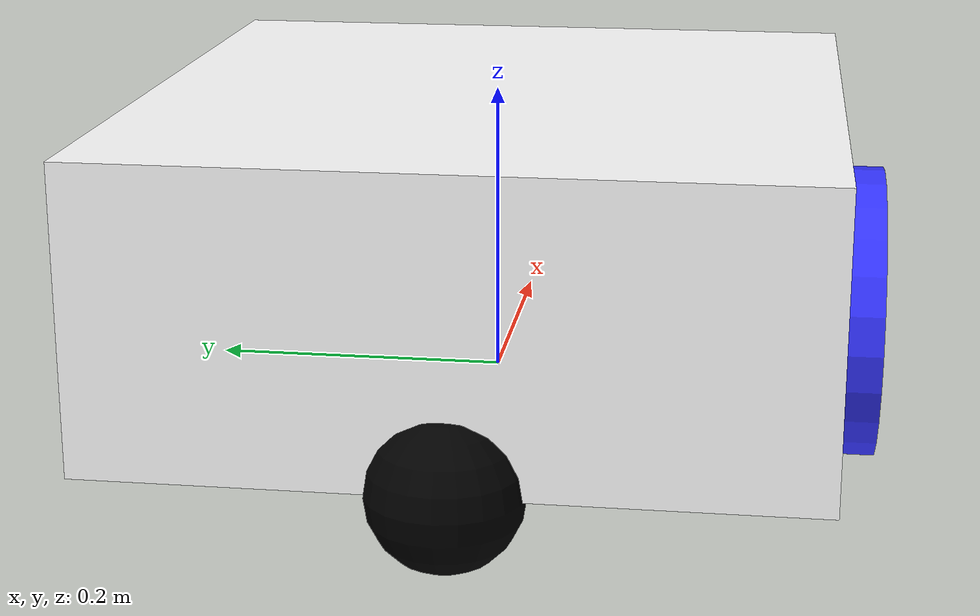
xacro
<?xml version="1.0"?>
<robot xmlns:xacro="http://www.ros.org/wiki/xacro" >

    <xacro:include filename="inertial_macros.xacro"/>

    <material name="white">
        <color rgba="1 1 1 1" />
    </material>

    <material name="orange">
        <color rgba="1 0.3 0.1 1"/>
    </material>

    <material name="blue">
        <color rgba="0.2 0.2 1 1"/>
    </material>

    <material name="black">
        <color rgba="0 0 0 1"/>
    </material>

    <!-- BASE LINK -->

    <link name="base_link">

    </link>

    <!-- CHASSIS LINK -->

    <joint name="chassis_joint" type="fixed">
        <parent link="base_link"/>
        <child link="chassis"/>
        <origin xyz="0 0 0.05"/>
    </joint>

    <link name="chassis">
        <visual>
            <origin xyz="0 0 0.05"/>
            <geometry>
                <box size="0.50 0.470 0.2"/>
            </geometry>
            <material name="white"/>
        </visual>
        <collision>
            <origin xyz="0 0 0.05"/>
            <geometry>
                <box size="0.5 0.47 0.2"/>
            </geometry>
        </collision>
        <xacro:inertial_box mass="0.5" x="0.5" y="0.47" z="0.2">
            <origin xyz="0 0 0.05" rpy="0 0 0"/>
        </xacro:inertial_box>
    </link>

    <gazebo reference="chassis">
        <material>Gazebo/White</material>
    </gazebo>

    <!-- LEFT WHEEL LINK -->

    <joint name="left_wheel_joint" type="continuous">
        <parent link="base_link"/>
        <child link="left_wheel"/>
        <origin xyz="0 0.25 0.05" rpy="-${pi/2} 0 0" />
        <axis xyz="0 0 1"/>
    </joint>

    <link name="left_wheel">
        <visual>
            <geometry>
                <cylinder radius="0.1" length="0.03"/>
            </geometry>
            <material name="blue"/>
        </visual>
        <collision>
            <geometry>
                <cylinder radius="0.1" length="0.03"/>
            </geometry>
        </collision>
        <xacro:inertial_cylinder mass="0.1" length="0.03" radius="0.1">
            <origin xyz="0 0.25 0.05" rpy="0 0 0"/>
        </xacro:inertial_cylinder>
    </link>
    <gazebo reference="left_wheel">
        <material>Gazebo/Blue</material>
    </gazebo>

    <!-- RIGHT WHEEL LINK -->

    <joint name="right_wheel_joint" type="continuous">
        <parent link="base_link"/>
        <child link="right_wheel"/>
        <origin xyz="0 -0.25 0.05" rpy="${pi/2} 0 0" />
        <axis xyz="0 0 -1"/>
    </joint>

    <link name="right_wheel">
        <visual>
            <geometry>
                <cylinder radius="0.10" length="0.03"/>
            </geometry>
            <material name="blue"/>
        </visual>
        <collision>
            <geometry>
                <cylinder radius="0.1" length="0.03"/>
            </geometry>
        </collision>
        <xacro:inertial_cylinder mass="0.1" length="0.03" radius="0.1">
            <origin xyz="0 -0.25 0.05" rpy="0 0 0"/>
        </xacro:inertial_cylinder>
    </link>
    <gazebo reference="right_wheel">
        <material>Gazebo/Blue</material>
    </gazebo>

    <!-- CASTER WHEEL LINK -->

    <joint name="caster_wheel_joint" type="fixed">
        <parent link="chassis"/>
        <child link="caster_wheel"/>
        <origin xyz="0.24 0 -0.05"/>
    </joint>

    <link name="caster_wheel">
        <visual>
            <geometry>
                <sphere radius="0.05"/>
            </geometry>
            <material name="black"/>
        </visual>
        <collision>
            <geometry>
                <sphere radius="0.05"/>
            </geometry>
        </collision>
        <xacro:inertial_sphere mass="0.1" radius="0.05">
            <origin xyz="0 0 -0.05" rpy="0 0 0"/>
        </xacro:inertial_sphere>
    </link>
    <gazebo reference="caster_wheel">
        <material>Gazebo/Black</material>
    </gazebo>

       <!-- CASTER REARWHEEL LINK -->

    <joint name="caster_rearwheel_joint" type="fixed">
        <parent link="chassis"/>
        <child link="caster_rearwheel"/>
        <origin xyz="-0.24 0 -0.05"/>
    </joint>

    <link name="caster_rearwheel">
        <visual>
            <geometry>
                <sphere radius="0.05"/>
            </geometry>
            <material name="black"/>
        </visual>
        <collision>
            <geometry>
                <sphere radius="0.05"/>
            </geometry>
        </collision>
        <xacro:inertial_sphere mass="0.1" radius="0.05">
            <origin xyz="-0.24 0 -0.05" rpy="0 0 0"/>
        </xacro:inertial_sphere>
    </link>
    <gazebo reference="caster_rearwheel">
        <material>Gazebo/Black</material>
    </gazebo>

</robot>
